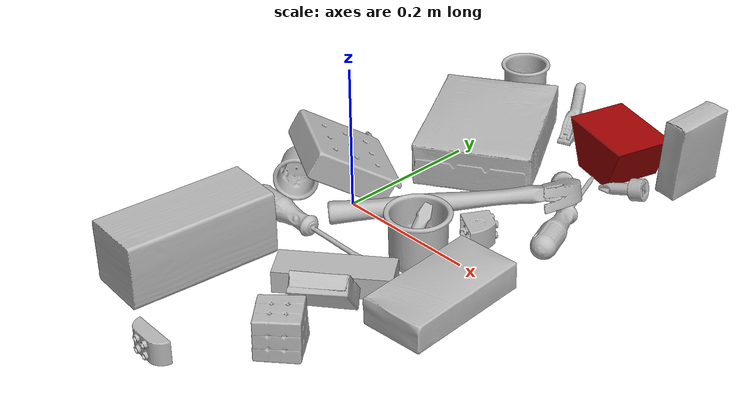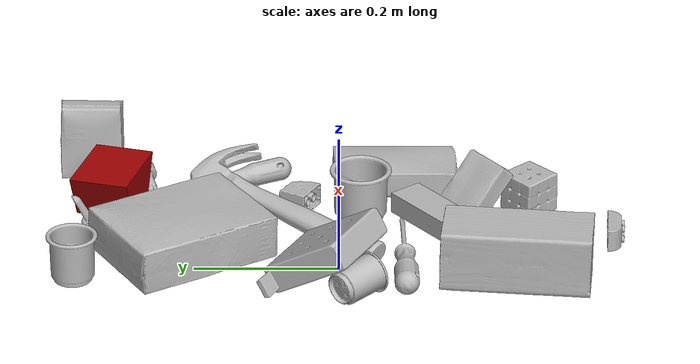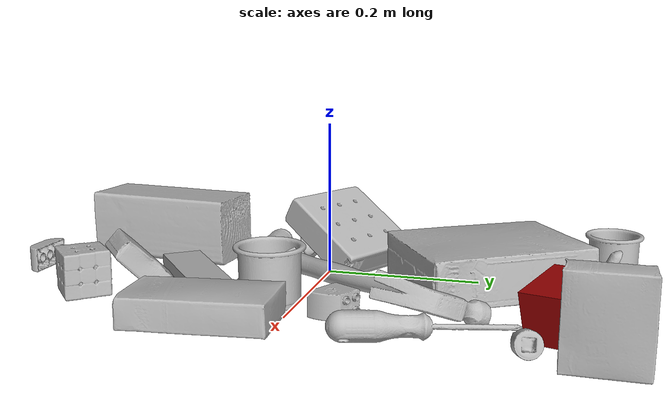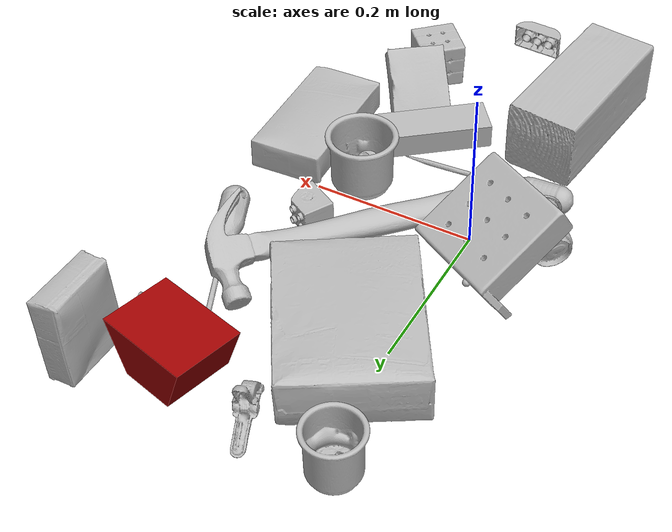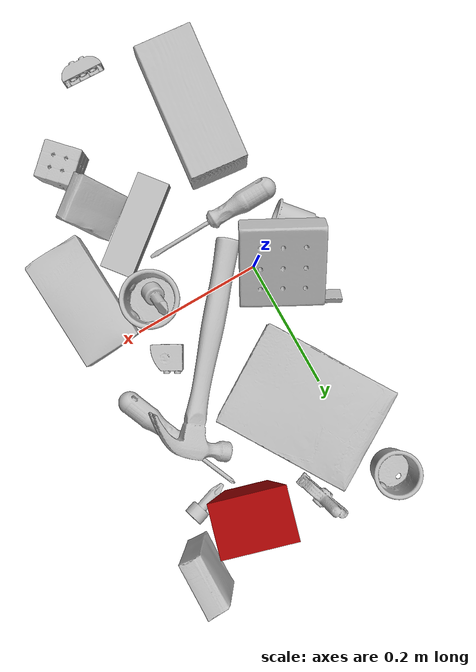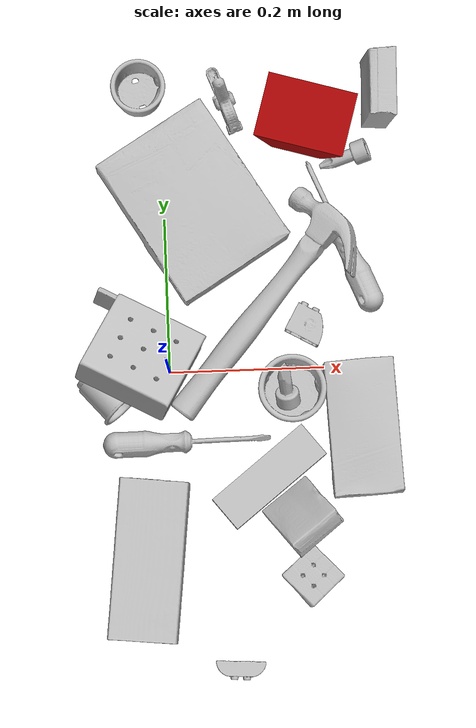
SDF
<sdf version="1.4">
  <world name="default">
    <light name="light1" type="point">
      <pose>0 0 1 0 0 0</pose>
      <diffuse>3 3 3 1</diffuse>
      <specular>3 3 3 1</specular>
    </light>
    <light name="light2" type="point">
      <pose>0 0.5 2 0 0 0</pose>
      <diffuse>1 1 1 1</diffuse>
      <specular>1 1 1 1</specular>
    </light>
    <light name="light3" type="point">
      <pose>0 0.5 2 0 0 0</pose>
      <diffuse>3 3 3 1</diffuse>
      <specular>3 3 3 1</specular>
    </light>
    <scene>
      <ambient>0.7 0.7 0.7</ambient>
    </scene>
    <model name="box21">
      <link name="link_box21">
        <collision name="default">
          <geometry>
            <mesh>
              <uri>model://cracker_box/collision_meshes/collision.obj</uri>
              <scale>1.0 1.0 1.0</scale>
            </mesh>
          </geometry>
          <surface>
            <friction>
              <ode>
                <mu>0.5</mu>
                <mu2>0.5</mu2>
              </ode>
            </friction>
          <contact>
        <ode>
            <max_vel>0</max_vel>
            <min_depth>0.0001</min_depth>
            <kp>1e8</kp>
        </ode>
    </contact></surface>
        </collision>
        <visual name="default">
          <geometry>
            <mesh>
              <uri>model://cracker_box/visual_meshes/visual.dae</uri>
              <scale>1.0 1.0 1.0</scale>
            </mesh>
          </geometry>
        </visual>
        <inertial>
          <mass>1.1849639415740967</mass>
          <pose>0.0009464144241064787 0.0002543424488976598 -0.0017029534792527556 -0.0003162077682631379 -0.011106487737543453 0.002546794536785776</pose>
          <inertia>
            <ixx>0.0030140192</ixx>
            <iyy>0.004976738</iyy>
            <izz>0.007102261</izz>
            <ixy>0</ixy>
            <ixz>0</ixz>
            <iyz>0</iyz>
          </inertia>
        </inertial>
      </link>
      <pose>0.03752624988555908 0.2161882519721985 0.035531219094991684 3.137209242098202 -0.016541628529602066 2.124804595072548</pose>
    </model>
    <model name="box22">
      <link name="link_box22">
        <collision name="default">
          <geometry>
            <mesh>
              <uri>model://rubiks_cube/collision_meshes/collision.obj</uri>
              <scale>1.0 1.0 1.0</scale>
            </mesh>
          </geometry>
          <surface>
            <friction>
              <ode>
                <mu>0.5</mu>
                <mu2>0.5</mu2>
              </ode>
            </friction>
          <contact>
        <ode>
            <max_vel>0</max_vel>
            <min_depth>0.0001</min_depth>
            <kp>1e8</kp>
        </ode>
    </contact></surface>
        </collision>
        <visual name="default">
          <geometry>
            <mesh>
              <uri>model://rubiks_cube/visual_meshes/visual.dae</uri>
              <scale>1.0 1.0 1.0</scale>
            </mesh>
          </geometry>
        </visual>
        <inertial>
          <mass>0.10796652734279633</mass>
          <pose>2.6721041649580002e-05 5.2569666877388954e-05 -7.264316082000732e-06 -0.054672548620525036 -0.09813983330627576 -0.03445544186372042</pose>
          <inertia>
            <ixx>5.965876e-05</ixx>
            <iyy>5.9380527e-05</iyy>
            <izz>6.0153117e-05</izz>
            <ixy>0</ixy>
            <ixz>0</ixz>
            <iyz>0</iyz>
          </inertia>
        </inertial>
      </link>
      <pose>0.17538122832775116 -0.269481897354126 0.0286790169775486 1.4776442986991912e-06 1.8887701638409895e-06 -0.8339181126871206</pose>
    </model>
    <model name="box23">
      <link name="link_box23">
        <collision name="default">
          <geometry>
            <mesh>
              <uri>model://sugar_box/collision_meshes/collision.obj</uri>
              <scale>1.0 1.0 1.0</scale>
            </mesh>
          </geometry>
          <surface>
            <friction>
              <ode>
                <mu>0.5</mu>
                <mu2>0.5</mu2>
              </ode>
            </friction>
          <contact>
        <ode>
            <max_vel>0</max_vel>
            <min_depth>0.0001</min_depth>
            <kp>1e8</kp>
        </ode>
    </contact></surface>
        </collision>
        <visual name="default">
          <geometry>
            <mesh>
              <uri>model://sugar_box/visual_meshes/visual.dae</uri>
              <scale>1.0 1.0 1.0</scale>
            </mesh>
          </geometry>
        </visual>
        <inertial>
          <mass>0.8519012928009033</mass>
          <pose>0.0010343727190047503 3.8491099985549226e-05 -0.0003636480832938105 -0.00040462606756407727 0.0010506635218583888 0.002615378789044619</pose>
          <inertia>
            <ixx>0.00070980185</ixx>
            <iyy>0.0022942254</iyy>
            <izz>0.0027464617</izz>
            <ixy>0</ixy>
            <ixz>0</ixz>
            <iyz>0</iyz>
          </inertia>
        </inertial>
      </link>
      <pose>0.24757350981235504 -0.08112819492816925 0.022798605263233185 0.0007757839363260118 -0.023433440739268355 1.6164275453906813</pose>
    </model>
    <model name="cup1">
      <link name="link_cup1">
        <collision name="default">
          <geometry>
            <mesh>
              <uri>model://b_cups/collision_meshes/collision.obj</uri>
              <scale>1.0 1.0 1.0</scale>
            </mesh>
          </geometry>
          <surface>
            <friction>
              <ode>
                <mu>0.5</mu>
                <mu2>0.5</mu2>
              </ode>
            </friction>
          <contact>
        <ode>
            <max_vel>0</max_vel>
            <min_depth>0.0001</min_depth>
            <kp>1e8</kp>
        </ode>
    </contact></surface>
        </collision>
        <visual name="default">
          <geometry>
            <mesh>
              <uri>model://b_cups/visual_meshes/visual.dae</uri>
              <scale>1.0 1.0 1.0</scale>
            </mesh>
          </geometry>
        </visual>
        <inertial>
          <mass>0.025879299268126488</mass>
          <pose>0.0005181999877095222 0.0018058597343042493 -0.0013381816679611802 0.11356295314662153 0.03872538879904025 -0.34569789869984097</pose>
          <inertia>
            <ixx>1.6939814e-05</ixx>
            <iyy>1.6618207e-05</iyy>
            <izz>1.4254532e-05</izz>
            <ixy>0</ixy>
            <ixz>0</ixz>
            <iyz>0</iyz>
          </inertia>
        </inertial>
      </link>
      <pose>-0.08153016120195389 -0.023279733955860138 0.027460407465696335 1.1024423496233056 -1.3715879026607765 1.192544690152177</pose>
    </model>
    <model name="cup2">
      <link name="link_cup2">
        <collision name="default">
          <geometry>
            <mesh>
              <uri>model://g_cups/collision_meshes/collision.obj</uri>
              <scale>1.0 1.0 1.0</scale>
            </mesh>
          </geometry>
          <surface>
            <friction>
              <ode>
                <mu>0.5</mu>
                <mu2>0.5</mu2>
              </ode>
            </friction>
          <contact>
        <ode>
            <max_vel>0</max_vel>
            <min_depth>0.0001</min_depth>
            <kp>1e8</kp>
        </ode>
    </contact></surface>
        </collision>
        <visual name="default">
          <geometry>
            <mesh>
              <uri>model://g_cups/visual_meshes/visual.dae</uri>
              <scale>1.0 1.0 1.0</scale>
            </mesh>
          </geometry>
        </visual>
        <inertial>
          <mass>0.06683293730020523</mass>
          <pose>-0.0007946278783492744 -4.206685844110325e-05 -0.002132937777787447 -0.21382591566164685 -0.31410327542238353 0.3112138520870617</pose>
          <inertia>
            <ixx>7.8009005e-05</ixx>
            <iyy>7.7743636e-05</iyy>
            <izz>8.080389e-05</izz>
            <ixy>0</ixy>
            <ixz>0</ixz>
            <iyz>0</iyz>
          </inertia>
        </inertial>
      </link>
      <pose>0.15710552036762238 -0.03070650063455105 0.03720303252339363 1.5236504356201404e-06 5.471178507058095e-06 -1.9963696578951982</pose>
    </model>
    <model name="box11">
      <link name="link_box11">
        <collision name="default">
          <geometry>
            <mesh>
              <uri>model://wood_block/collision_meshes/collision.obj</uri>
              <scale>1.0 1.0 1.0</scale>
            </mesh>
          </geometry>
          <surface>
            <friction>
              <ode>
                <mu>0.5</mu>
                <mu2>0.5</mu2>
              </ode>
            </friction>
          <contact>
        <ode>
            <max_vel>0</max_vel>
            <min_depth>0.0001</min_depth>
            <kp>1e8</kp>
        </ode>
    </contact></surface>
        </collision>
        <visual name="default">
          <geometry>
            <mesh>
              <uri>model://wood_block/visual_meshes/visual.dae</uri>
              <scale>1.0 1.0 1.0</scale>
            </mesh>
          </geometry>
        </visual>
        <inertial>
          <mass>0.9227498173713684</mass>
          <pose>-5.813315056002466e-06 -0.0005708094104193151 0.0002640858292579651 -0.05221074847543751 -0.005192695234575722 -0.00686137748598008</pose>
          <inertia>
            <ixx>0.001234779</ixx>
            <iyy>0.0039006667</iyy>
            <izz>0.0038860766</izz>
            <ixy>0</ixy>
            <ixz>0</ixz>
            <iyz>0</iyz>
          </inertia>
        </inertial>
      </link>
      <pose>-0.03311493620276451 -0.24321873486042023 0.045700643211603165 1.5681302071717151 -0.006938974600891267 1.4677195178263605</pose>
    </model>
    <model name="box12">
      <link name="link_box12">
        <collision name="default">
          <geometry>
            <mesh>
              <uri>model://pudding_box/collision_meshes/collision.obj</uri>
              <scale>1.0 1.0 1.0</scale>
            </mesh>
          </geometry>
          <surface>
            <friction>
              <ode>
                <mu>0.5</mu>
                <mu2>0.5</mu2>
              </ode>
            </friction>
          <contact>
        <ode>
            <max_vel>0</max_vel>
            <min_depth>0.0001</min_depth>
            <kp>1e8</kp>
        </ode>
    </contact></surface>
        </collision>
        <visual name="default">
          <geometry>
            <mesh>
              <uri>model://pudding_box/visual_meshes/visual.dae</uri>
              <scale>1.0 1.0 1.0</scale>
            </mesh>
          </geometry>
        </visual>
        <inertial>
          <mass>0.23326139152050018</mass>
          <pose>0.0004894821904599667 0.0008067885646596551 -0.0005188827635720372 0.0052131032034861725 -0.006603797335681708 0.02007982515858456</pose>
          <inertia>
            <ixx>0.00026369</ixx>
            <iyy>0.00017741251</iyy>
            <izz>0.00038940719</izz>
            <ixy>0</ixy>
            <ixz>0</ixz>
            <iyz>0</iyz>
          </inertia>
        </inertial>
      </link>
      <pose>0.2819017767906189 0.3540695309638977 0.05613693967461586 1.6395897606116392 -0.00116734636990715 1.5629113033899806</pose>
    </model>
    <model name="box13">
      <link name="link_box13">
        <collision name="default">
          <geometry>
            <mesh>
              <uri>model://gelatin_box/collision_meshes/collision.obj</uri>
              <scale>1.0 1.0 1.0</scale>
            </mesh>
          </geometry>
          <surface>
            <friction>
              <ode>
                <mu>0.5</mu>
                <mu2>0.5</mu2>
              </ode>
            </friction>
          <contact>
        <ode>
            <max_vel>0</max_vel>
            <min_depth>0.0001</min_depth>
            <kp>1e8</kp>
        </ode>
    </contact></surface>
        </collision>
        <visual name="default">
          <geometry>
            <mesh>
              <uri>model://gelatin_box/visual_meshes/visual.dae</uri>
              <scale>1.0 1.0 1.0</scale>
            </mesh>
          </geometry>
        </visual>
        <inertial>
          <mass>0.0997389405965805</mass>
          <pose>0.0004319618456065655 0.00011156871187267825 -0.0003640321083366871 -0.001050372080915675 -0.004755817759010177 0.0164405576084854</pose>
          <inertia>
            <ixx>7.040755e-05</ixx>
            <iyy>5.0291743e-05</iyy>
            <izz>0.000107175976</izz>
            <ixy>0</ixy>
            <ixz>0</ixz>
            <iyz>0</iyz>
          </inertia>
        </inertial>
      </link>
      <pose>0.16496732831001282 -0.19278661906719208 0.0401749387383461 -0.7896602083812888 -0.011431951110399725 0.6472003302945101</pose>
    </model>
    <model name="box14">
      <link name="link_box14">
        <collision name="default">
          <geometry>
            <mesh>
              <uri>model://jenga/collision_meshes/collision.obj</uri>
              <scale>1.0 1.0 1.0</scale>
            </mesh>
          </geometry>
          <surface>
            <friction>
              <ode>
                <mu>0.5</mu>
                <mu2>0.5</mu2>
              </ode>
            </friction>
          <contact>
        <ode>
            <max_vel>0</max_vel>
            <min_depth>0.0001</min_depth>
            <kp>1e8</kp>
        </ode>
    </contact></surface>
        </collision>
        <visual name="default">
          <geometry>
            <mesh>
              <uri>model://jenga/visual_meshes/visual.dae</uri>
              <scale>1.0 1.0 1.0</scale>
            </mesh>
          </geometry>
        </visual>
        <inertial>
          <mass>0.23366476595401764</mass>
          <pose>-2.502855807051674e-07 -0.0001025000965455547 -4.092339804628864e-05 0.0 -7.34215461761844e-07 0.0</pose>
          <inertia>
            <ixx>6.466071e-05</ixx>
            <iyy>0.0004381392</iyy>
            <izz>0.00046775083</izz>
            <ixy>0</ixy>
            <ixz>0</ixz>
            <iyz>0</iyz>
          </inertia>
        </inertial>
      </link>
      <pose>0.12410205602645874 -0.14012877643108368 0.014999995008111 3.14346740899087e-08 2.7612420116310905e-09 0.6691159761686968</pose>
    </model>
    <model name="cup15">
      <link name="link_cup15">
        <collision name="default">
          <geometry>
            <mesh>
              <uri>model://d_cups/collision_meshes/collision.obj</uri>
              <scale>1.0 1.0 1.0</scale>
            </mesh>
          </geometry>
          <surface>
            <friction>
              <ode>
                <mu>0.5</mu>
                <mu2>0.5</mu2>
              </ode>
            </friction>
          <contact>
        <ode>
            <max_vel>0</max_vel>
            <min_depth>0.0001</min_depth>
            <kp>1e8</kp>
        </ode>
    </contact></surface>
        </collision>
        <visual name="default">
          <geometry>
            <mesh>
              <uri>model://d_cups/visual_meshes/visual.dae</uri>
              <scale>1.0 1.0 1.0</scale>
            </mesh>
          </geometry>
        </visual>
        <inertial>
          <mass>0.05354860797524452</mass>
          <pose>0.000806806143373251 0.001911740517243743 -0.002266649389639497 0.240133395025133 -0.24708811164710584 0.5942101592185234</pose>
          <inertia>
            <ixx>4.4832785e-05</ixx>
            <iyy>4.470303e-05</iyy>
            <izz>4.0581297e-05</izz>
            <ixy>0</ixy>
            <ixz>0</ixz>
            <iyz>0</iyz>
          </inertia>
        </inertial>
      </link>
      <pose>-0.027550749480724335 0.36490389704704285 0.0346590131521225 -5.745213994795219e-08 -5.968821835221244e-08 -1.9023024424913886</pose>
    </model>
    <model name="toy1">
      <link name="link_toy1">
        <collision name="default">
          <geometry>
            <mesh>
              <uri>model://d_toy_airplane/collision_meshes/collision.obj</uri>
              <scale>1.0 1.0 1.0</scale>
            </mesh>
          </geometry>
          <surface>
            <friction>
              <ode>
                <mu>0.5</mu>
                <mu2>0.5</mu2>
              </ode>
            </friction>
          <contact>
        <ode>
            <max_vel>0</max_vel>
            <min_depth>0.0001</min_depth>
            <kp>1e8</kp>
        </ode>
    </contact></surface>
        </collision>
        <visual name="default">
          <geometry>
            <mesh>
              <uri>model://d_toy_airplane/visual_meshes/visual.dae</uri>
              <scale>1.0 1.0 1.0</scale>
            </mesh>
          </geometry>
        </visual>
        <inertial>
          <mass>0.01055214088410139</mass>
          <pose>9.410294296685606e-05 -5.809328649775125e-05 -0.011728094890713692 0.00026701540047293157 0.004678982739479609 0.5194739606880012</pose>
          <inertia>
            <ixx>3.1633276e-06</ixx>
            <iyy>3.1657132e-06</iyy>
            <izz>9.55029e-07</izz>
            <ixy>0</ixy>
            <ixz>0</ixz>
            <iyz>0</iyz>
          </inertia>
        </inertial>
      </link>
      <pose>0.23527678847312927 0.271474689245224 0.011044091545045376 -2.4195997650501666 -1.2639554216330282 2.6945536376133203</pose>
    </model>
    <model name="toy2">
      <link name="link_toy2">
        <collision name="default">
          <geometry>
            <mesh>
              <uri>model://d_lego_duplo/collision_meshes/collision.obj</uri>
              <scale>1.0 1.0 1.0</scale>
            </mesh>
          </geometry>
          <surface>
            <friction>
              <ode>
                <mu>0.5</mu>
                <mu2>0.5</mu2>
              </ode>
            </friction>
          <contact>
        <ode>
            <max_vel>0</max_vel>
            <min_depth>0.0001</min_depth>
            <kp>1e8</kp>
        </ode>
    </contact></surface>
        </collision>
        <visual name="default">
          <geometry>
            <mesh>
              <uri>model://d_lego_duplo/visual_meshes/visual.dae</uri>
              <scale>1.0 1.0 1.0</scale>
            </mesh>
          </geometry>
        </visual>
        <inertial>
          <mass>0.039816875010728836</mass>
          <pose>0.0028305640444159508 0.00016366131603717804 0.000858980929479003 0.08010950238605453 -0.3835521959243733 0.0010296761363168562</pose>
          <inertia>
            <ixx>7.70796e-06</ixx>
            <iyy>1.0939688e-05</iyy>
            <izz>1.0549791e-05</izz>
            <ixy>0</ixy>
            <ixz>0</ixz>
            <iyz>0</iyz>
          </inertia>
        </inertial>
      </link>
      <pose>0.18204911053180695 0.05617993697524071 0.01624963991343975 1.579337329234123 -0.013119842031463505 2.6305666590166505</pose>
    </model>
    <model name="toy3">
      <link name="link_toy3">
        <collision name="default">
          <geometry>
            <mesh>
              <uri>model://nine_hole_peg_test/collision_meshes/collision.obj</uri>
              <scale>1.0 1.0 1.0</scale>
            </mesh>
          </geometry>
          <surface>
            <friction>
              <ode>
                <mu>0.5</mu>
                <mu2>0.5</mu2>
              </ode>
            </friction>
          <contact>
        <ode>
            <max_vel>0</max_vel>
            <min_depth>0.0001</min_depth>
            <kp>1e8</kp>
        </ode>
    </contact></surface>
        </collision>
        <visual name="default">
          <geometry>
            <mesh>
              <uri>model://nine_hole_peg_test/visual_meshes/visual.dae</uri>
              <scale>1.0 1.0 1.0</scale>
            </mesh>
          </geometry>
        </visual>
        <inertial>
          <mass>0.7048692107200623</mass>
          <pose>-0.0046173869632184505 -0.009647614322602749 2.6460689696250483e-05 -0.0014666794682547425 0.0007194190753660851 -0.6342416580414534</pose>
          <inertia>
            <ixx>0.0011021789</ixx>
            <iyy>0.0010290928</iyy>
            <izz>0.0019313421</izz>
            <ixy>0</ixy>
            <ixz>0</ixz>
            <iyz>0</iyz>
          </inertia>
        </inertial>
      </link>
      <pose>-0.04262326657772064 0.026784587651491165 0.04625462740659714 0.00622658306966836 0.5424837511361471 1.084084968760432</pose>
    </model>
    <model name="toy4">
      <link name="link_toy4">
        <collision name="default">
          <geometry>
            <mesh>
              <uri>model://a_lego_duplo/collision_meshes/collision.obj</uri>
              <scale>1.0 1.0 1.0</scale>
            </mesh>
          </geometry>
          <surface>
            <friction>
              <ode>
                <mu>0.5</mu>
                <mu2>0.5</mu2>
              </ode>
            </friction>
          <contact>
        <ode>
            <max_vel>0</max_vel>
            <min_depth>0.0001</min_depth>
            <kp>1e8</kp>
        </ode>
    </contact></surface>
        </collision>
        <visual name="default">
          <geometry>
            <mesh>
              <uri>model://a_lego_duplo/visual_meshes/visual.dae</uri>
              <scale>1.0 1.0 1.0</scale>
            </mesh>
          </geometry>
        </visual>
        <inertial>
          <mass>0.021006127819418907</mass>
          <pose>-0.00011337678006384522 0.00018517556600272655 0.0003692602913361043 -0.014116980161978756 -0.00012565077681184441 6.142327078429463e-05</pose>
          <inertia>
            <ixx>2.6931523e-06</ixx>
            <iyy>6.033251e-06</iyy>
            <izz>7.473524e-06</izz>
            <ixy>0</ixy>
            <ixz>0</ixz>
            <iyz>0</iyz>
          </inertia>
        </inertial>
      </link>
      <pose>0.07892553508281708 -0.38660523295402527 0.016109010204672813 1.570798143926517 -5.560772233051381e-07 -0.05627924170075754</pose>
    </model>
    <model name="toy5">
      <link name="link_toy5">
        <collision name="default">
          <geometry>
            <mesh>
              <uri>model://e_toy_airplane/collision_meshes/collision.obj</uri>
              <scale>1.0 1.0 1.0</scale>
            </mesh>
          </geometry>
          <surface>
            <friction>
              <ode>
                <mu>0.5</mu>
                <mu2>0.5</mu2>
              </ode>
            </friction>
          <contact>
        <ode>
            <max_vel>0</max_vel>
            <min_depth>0.0001</min_depth>
            <kp>1e8</kp>
        </ode>
    </contact></surface>
        </collision>
        <visual name="default">
          <geometry>
            <mesh>
              <uri>model://e_toy_airplane/visual_meshes/visual.dae</uri>
              <scale>1.0 1.0 1.0</scale>
            </mesh>
          </geometry>
        </visual>
        <inertial>
          <mass>0.02451101876795292</mass>
          <pose>0.00011740468471543863 -2.248291639261879e-05 -0.011187203228473663 0.00551850103187323 0.009228285956806933 0.150416364683818</pose>
          <inertia>
            <ixx>7.481042e-06</ixx>
            <iyy>7.4045165e-06</iyy>
            <izz>2.2483475e-06</izz>
            <ixy>0</ixy>
            <ixz>0</ixz>
            <iyz>0</iyz>
          </inertia>
        </inertial>
      </link>
      <pose>0.14873775839805603 -0.022629421204328537 0.042712029069662094 -0.5334031472503901 -0.5700192295905335 -0.5741908601664184</pose>
    </model>
    <model name="toy6">
      <link name="link_toy6">
        <collision name="default">
          <geometry>
            <mesh>
              <uri>model://prism/collision_meshes/collision.obj</uri>
              <scale>1.0 1.0 1.0</scale>
            </mesh>
          </geometry>
          <surface>
            <friction>
              <ode>
                <mu>0.5</mu>
                <mu2>0.5</mu2>
              </ode>
            </friction>
          <contact>
        <ode>
            <max_vel>0</max_vel>
            <min_depth>0.0001</min_depth>
            <kp>1e8</kp>
        </ode>
    </contact></surface>
        </collision>
        <visual name="default">
          <geometry>
            <mesh>
              <uri>model://prism/visual_meshes/visual.dae</uri>
              <scale>1.0 1.0 1.0</scale>
            </mesh>
          </geometry>
        </visual>
        <inertial>
          <mass>0.639074981212616</mass>
          <pose>-9.85359656624496e-05 -4.96157269935793e-07 -0.003386910306289792 0.0 0.006559180766136186 0.0</pose>
          <inertia>
            <ixx>0.0005767573</ixx>
            <iyy>0.0006970186</iyy>
            <izz>0.0008537644</izz>
            <ixy>0</ixy>
            <ixz>0</ixz>
            <iyz>0</iyz>
          </inertia>
        </inertial>
      </link>
      <pose>0.18643274903297424 0.32191142439842224 0.031446877866983414 -3.141592638920306 0.01664668594801037 -0.2760947713380711</pose>
    </model>
    <model name="hardware1">
      <link name="link_hardware1">
        <collision name="default">
          <geometry>
            <mesh>
              <uri>model://medium_clamp/collision_meshes/collision.obj</uri>
              <scale>1.0 1.0 1.0</scale>
            </mesh>
          </geometry>
          <surface>
            <friction>
              <ode>
                <mu>0.5</mu>
                <mu2>0.5</mu2>
              </ode>
            </friction>
          <contact>
        <ode>
            <max_vel>0</max_vel>
            <min_depth>0.0001</min_depth>
            <kp>1e8</kp>
        </ode>
    </contact></surface>
        </collision>
        <visual name="default">
          <geometry>
            <mesh>
              <uri>model://medium_clamp/visual_meshes/visual.dae</uri>
              <scale>1.0 1.0 1.0</scale>
            </mesh>
          </geometry>
        </visual>
        <inertial>
          <mass>0.01437164656817913</mass>
          <pose>0.005390993785113096 0.00039532355731353164 -0.0001222158025484532 -0.001226922255807767 0.0025845058861846287 0.038207728721457376</pose>
          <inertia>
            <ixx>3.9153533e-06</ixx>
            <iyy>5.697947e-06</iyy>
            <izz>8.776544e-06</izz>
            <ixy>0</ixy>
            <ixz>0</ixz>
            <iyz>0</iyz>
          </inertia>
        </inertial>
      </link>
      <pose>0.08225945383310318 0.35032179951667786 0.024362318217754364 1.5765647133938072 0.3934689500758274 -1.219221648706506</pose>
    </model>
    <model name="hardware2">
      <link name="link_hardware2">
        <collision name="default">
          <geometry>
            <mesh>
              <uri>model://hammer/collision_meshes/collision.obj</uri>
              <scale>1.0 1.0 1.0</scale>
            </mesh>
          </geometry>
          <surface>
            <friction>
              <ode>
                <mu>0.5</mu>
                <mu2>0.5</mu2>
              </ode>
            </friction>
          <contact>
        <ode>
            <max_vel>0</max_vel>
            <min_depth>0.0001</min_depth>
            <kp>1e8</kp>
        </ode>
    </contact></surface>
        </collision>
        <visual name="default">
          <geometry>
            <mesh>
              <uri>model://hammer/visual_meshes/visual.dae</uri>
              <scale>1.0 1.0 1.0</scale>
            </mesh>
          </geometry>
        </visual>
        <inertial>
          <mass>0.29233166575431824</mass>
          <pose>0.009415771812200546 -0.011892357841134071 -0.0001235063245985657 0.02315535385536088 -0.004792164028838156 -0.01276032390705471</pose>
          <inertia>
            <ixx>0.0001252207</ixx>
            <iyy>0.003393116</iyy>
            <izz>0.0034903311</izz>
            <ixy>0</ixy>
            <ixz>0</ixz>
            <iyz>0</iyz>
          </inertia>
        </inertial>
      </link>
      <pose>0.13446557521820068 0.07483962178230286 0.03145376965403557 2.7348316029853232 -0.06990490018289533 0.8766804243294308</pose>
    </model>
    <model name="hardware3">
      <link name="link_hardware3">
        <collision name="default">
          <geometry>
            <mesh>
              <uri>model://phillips_screwdriver/collision_meshes/collision.obj</uri>
              <scale>1.0 1.0 1.0</scale>
            </mesh>
          </geometry>
          <surface>
            <friction>
              <ode>
                <mu>0.5</mu>
                <mu2>0.5</mu2>
              </ode>
            </friction>
          <contact>
        <ode>
            <max_vel>0</max_vel>
            <min_depth>0.0001</min_depth>
            <kp>1e8</kp>
        </ode>
    </contact></surface>
        </collision>
        <visual name="default">
          <geometry>
            <mesh>
              <uri>model://phillips_screwdriver/visual_meshes/visual.dae</uri>
              <scale>1.0 1.0 1.0</scale>
            </mesh>
          </geometry>
        </visual>
        <inertial>
          <mass>0.11685379594564438</mass>
          <pose>-0.04777182638645172 0.0010362302418798208 -0.0004555549821816385 -0.15721778382646787 0.005850995328295584 -0.002156740385256481</pose>
          <inertia>
            <ixx>1.3729124e-05</ixx>
            <iyy>0.00017213916</iyy>
            <izz>0.00017228544</izz>
            <ixy>0</ixy>
            <ixz>0</ixz>
            <iyz>0</iyz>
          </inertia>
        </inertial>
      </link>
      <pose>0.22823137044906616 0.1663697361946106 0.015055903233587742 -2.448244445688642 0.05311630085237415 1.961649188778157</pose>
    </model>
    <model name="hardware4">
      <link name="link_hardware4">
        <collision name="default">
          <geometry>
            <mesh>
              <uri>model://flat_screwdriver/collision_meshes/collision.obj</uri>
              <scale>1.0 1.0 1.0</scale>
            </mesh>
          </geometry>
          <surface>
            <friction>
              <ode>
                <mu>0.5</mu>
                <mu2>0.5</mu2>
              </ode>
            </friction>
          <contact>
        <ode>
            <max_vel>0</max_vel>
            <min_depth>0.0001</min_depth>
            <kp>1e8</kp>
        </ode>
    </contact></surface>
        </collision>
        <visual name="default">
          <geometry>
            <mesh>
              <uri>model://flat_screwdriver/visual_meshes/visual.dae</uri>
              <scale>1.0 1.0 1.0</scale>
            </mesh>
          </geometry>
        </visual>
        <inertial>
          <mass>0.10915977507829666</mass>
          <pose>-0.0489187091588974 -0.0006576799787580967 -0.000614091579336673 -0.5614402636475724 -0.003233725963840683 0.006982283174401888</pose>
          <inertia>
            <ixx>1.2897148e-05</ixx>
            <iyy>0.0001637322</iyy>
            <izz>0.00016365637</izz>
            <ixy>0</ixy>
            <ixz>0</ixz>
            <iyz>0</iyz>
          </inertia>
        </inertial>
      </link>
      <pose>0.018071414902806282 -0.09109281003475189 0.014474628493189812 -2.418123007947554 0.0374750593043679 0.019854396445083963</pose>
    </model>
  <physics type="ode">
      <max_contacts>50</max_contacts>
      <ode>
        <solver>
          <type>quick</type>
          <iters>75</iters>
        </solver>
        <constraints>
          <contact_max_correcting_vel>0</contact_max_correcting_vel>
          <contact_surface_layer>0</contact_surface_layer>
        </constraints>
      </ode>
    </physics></world>
</sdf>
